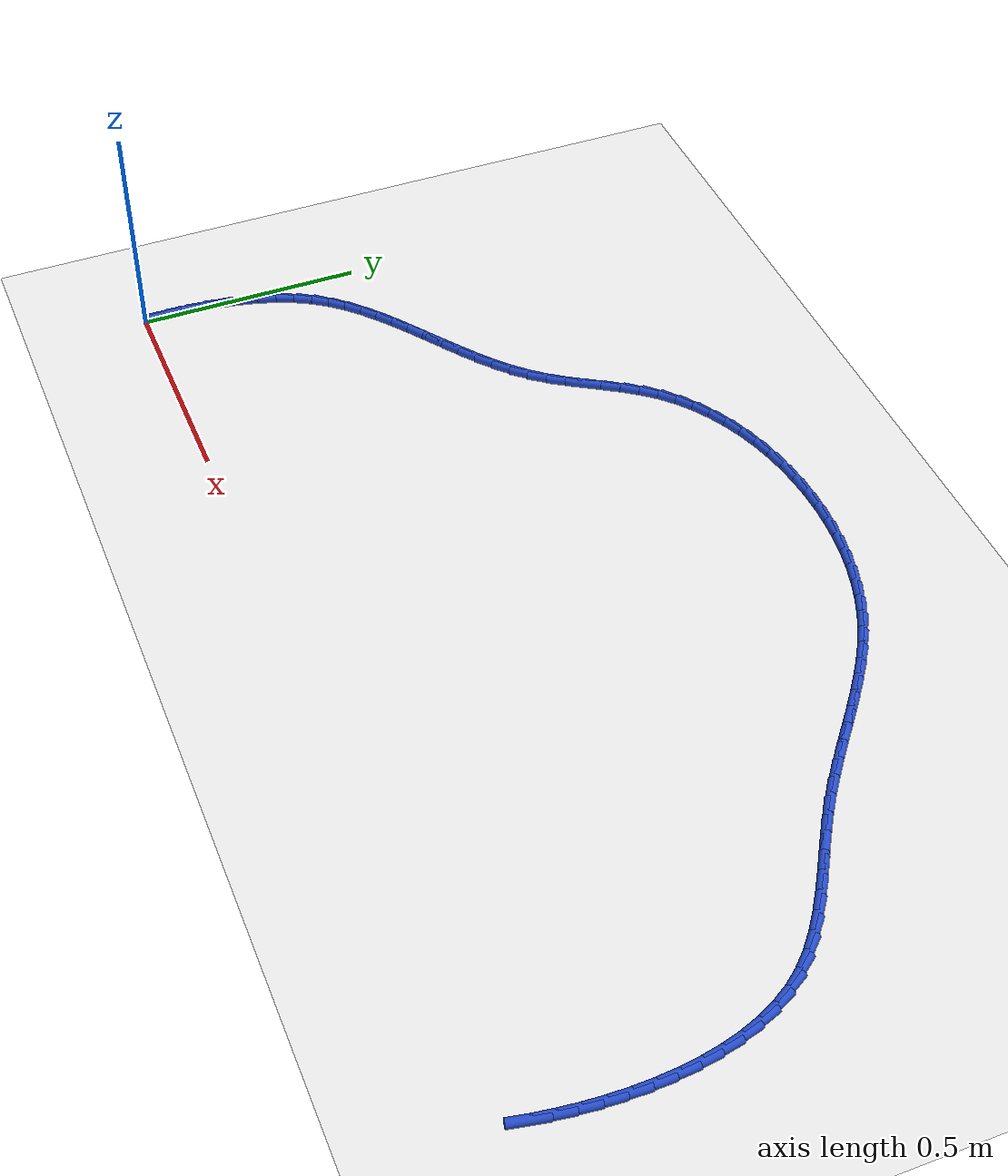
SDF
<sdf version="1.6">
 <world name="default">
  <model name="ground_plane">
   <static>1</static>
   <link name="link">
    <collision name="collision">
     <geometry><plane><normal>0 0 1</normal><size>100 100</size></plane></geometry>
     <surface><friction><ode><mu>100</mu><mu2>50</mu2></ode></friction></surface>
    </collision>
    <visual name="visual">
     <cast_shadows>0</cast_shadows>
     <geometry><plane><normal>0 0 1</normal><size>100 100</size></plane></geometry>
     <material>
      <script><uri>file://media/materials/scripts/gazebo.material</uri><name>Gazebo/WhiteGlow</name></script>
     </material>
    </visual>
   </link>
  </model>
  <model name="line">
   <link name="link_1">
    <pose>-0.0006810844086082563 0.044944533552194264 0.01 0 1.57 1.5507419571572678</pose>
    <collision name="collision">
     <geometry><cylinder><radius>0.01</radius><length>0.08</length></cylinder></geometry>
    </collision>
    <visual name="visual">
     <material>
      <script><name>Gazebo/Blue</name><uri>file://media/materials/scripts/gazebo.material</uri></script>
     </material>
     <geometry><cylinder><radius>0.01</radius><length>0.08</length></cylinder></geometry>
    </visual>
   </link>
   <link name="link_2">
    <pose>0.00022326739006194713 0.09003348798143386 0.01 0 1.57 1.5091520987764244</pose>
    <collision name="collision">
     <geometry><cylinder><radius>0.01</radius><length>0.08</length></cylinder></geometry>
    </collision>
    <visual name="visual">
     <material>
      <script><name>Gazebo/Blue</name><uri>file://media/materials/scripts/gazebo.material</uri></script>
     </material>
     <geometry><cylinder><radius>0.01</radius><length>0.08</length></cylinder></geometry>
    </visual>
   </link>
   <link name="link_3">
    <pose>0.002993428314982008 0.13491443213614773 0.01 0 1.57 1.4603209180004186</pose>
    <collision name="collision">
     <geometry><cylinder><radius>0.01</radius><length>0.08</length></cylinder></geometry>
    </collision>
    <visual name="visual">
     <material>
      <script><name>Gazebo/Blue</name><uri>file://media/materials/scripts/gazebo.material</uri></script>
     </material>
     <geometry><cylinder><radius>0.01</radius><length>0.08</length></cylinder></geometry>
    </visual>
   </link>
   <link name="link_4">
    <pose>0.007909771285123334 0.17923493486476474 0.01 0 1.57 1.4032212727957087</pose>
    <collision name="collision">
     <geometry><cylinder><radius>0.01</radius><length>0.08</length></cylinder></geometry>
    </collision>
    <visual name="visual">
     <material>
      <script><name>Gazebo/Blue</name><uri>file://media/materials/scripts/gazebo.material</uri></script>
     </material>
     <geometry><cylinder><radius>0.01</radius><length>0.08</length></cylinder></geometry>
    </visual>
   </link>
   <link name="link_5">
    <pose>0.015252669219457327 0.22264256501571383 0.01 0 1.57 1.3366952583611549</pose>
    <collision name="collision">
     <geometry><cylinder><radius>0.01</radius><length>0.08</length></cylinder></geometry>
    </collision>
    <visual name="visual">
     <material>
      <script><name>Gazebo/Blue</name><uri>file://media/materials/scripts/gazebo.material</uri></script>
     </material>
     <geometry><cylinder><radius>0.01</radius><length>0.08</length></cylinder></geometry>
    </visual>
   </link>
   <link name="link_6">
    <pose>0.025302495036955412 0.2647848914374238 0.01 0 1.57 1.2595438802911676</pose>
    <collision name="collision">
     <geometry><cylinder><radius>0.01</radius><length>0.08</length></cylinder></geometry>
    </collision>
    <visual name="visual">
     <material>
      <script><name>Gazebo/Blue</name><uri>file://media/materials/scripts/gazebo.material</uri></script>
     </material>
     <geometry><cylinder><radius>0.01</radius><length>0.08</length></cylinder></geometry>
    </visual>
   </link>
   <link name="link_7">
    <pose>0.03833962165658896 0.30530948297832355 0.01 0 1.57 1.170702798260568</pose>
    <collision name="collision">
     <geometry><cylinder><radius>0.01</radius><length>0.08</length></cylinder></geometry>
    </collision>
    <visual name="visual">
     <material>
      <script><name>Gazebo/Blue</name><uri>file://media/materials/scripts/gazebo.material</uri></script>
     </material>
     <geometry><cylinder><radius>0.01</radius><length>0.08</length></cylinder></geometry>
    </visual>
   </link>
   <link name="link_8">
    <pose>0.05464442199732939 0.34386390848684195 0.01 0 1.57 1.0695365118263913</pose>
    <collision name="collision">
     <geometry><cylinder><radius>0.01</radius><length>0.08</length></cylinder></geometry>
    </collision>
    <visual name="visual">
     <material>
      <script><name>Gazebo/Blue</name><uri>file://media/materials/scripts/gazebo.material</uri></script>
     </material>
     <geometry><cylinder><radius>0.01</radius><length>0.08</length></cylinder></geometry>
    </visual>
   </link>
   <link name="link_9">
    <pose>0.07449726897814812 0.38009573681140796 0.01 0 1.57 0.9596895195471774</pose>
    <collision name="collision">
     <geometry><cylinder><radius>0.01</radius><length>0.08</length></cylinder></geometry>
    </collision>
    <visual name="visual">
     <material>
      <script><name>Gazebo/Blue</name><uri>file://media/materials/scripts/gazebo.material</uri></script>
     </material>
     <geometry><cylinder><radius>0.01</radius><length>0.08</length></cylinder></geometry>
    </visual>
   </link>
   <link name="link_10">
    <pose>0.09807415052391417 0.41374970725378674 0.01 0 1.57 0.8599576480579803</pose>
    <collision name="collision">
     <geometry><cylinder><radius>0.01</radius><length>0.08</length></cylinder></geometry>
    </collision>
    <visual name="visual">
     <material>
      <script><name>Gazebo/Blue</name><uri>file://media/materials/scripts/gazebo.material</uri></script>
     </material>
     <geometry><cylinder><radius>0.01</radius><length>0.08</length></cylinder></geometry>
    </visual>
   </link>
   <link name="link_11">
    <pose>0.12502897283697698 0.44505655730056204 0.01 0 1.57 0.7772570600761505</pose>
    <collision name="collision">
     <geometry><cylinder><radius>0.01</radius><length>0.08</length></cylinder></geometry>
    </collision>
    <visual name="visual">
     <material>
      <script><name>Gazebo/Blue</name><uri>file://media/materials/scripts/gazebo.material</uri></script>
     </material>
     <geometry><cylinder><radius>0.01</radius><length>0.08</length></cylinder></geometry>
    </visual>
   </link>
   <link name="link_12">
    <pose>0.15485275519003858 0.47439865348167265 0.01 0 1.57 0.7117297020319722</pose>
    <collision name="collision">
     <geometry><cylinder><radius>0.01</radius><length>0.08</length></cylinder></geometry>
    </collision>
    <visual name="visual">
     <material>
      <script><name>Gazebo/Blue</name><uri>file://media/materials/scripts/gazebo.material</uri></script>
     </material>
     <geometry><cylinder><radius>0.01</radius><length>0.08</length></cylinder></geometry>
    </visual>
   </link>
   <link name="link_13">
    <pose>0.18703646300983845 0.5021584124514704 0.01 0 1.57 0.6626610174407837</pose>
    <collision name="collision">
     <geometry><cylinder><radius>0.01</radius><length>0.08</length></cylinder></geometry>
    </collision>
    <visual name="visual">
     <material>
      <script><name>Gazebo/Blue</name><uri>file://media/materials/scripts/gazebo.material</uri></script>
     </material>
     <geometry><cylinder><radius>0.01</radius><length>0.08</length></cylinder></geometry>
    </visual>
   </link>
   <link name="link_14">
    <pose>0.2210710617231165 0.5287182508643081 0.01 0 1.57 0.6290551413989284</pose>
    <collision name="collision">
     <geometry><cylinder><radius>0.01</radius><length>0.08</length></cylinder></geometry>
    </collision>
    <visual name="visual">
     <material>
      <script><name>Gazebo/Blue</name><uri>file://media/materials/scripts/gazebo.material</uri></script>
     </material>
     <geometry><cylinder><radius>0.01</radius><length>0.08</length></cylinder></geometry>
    </visual>
   </link>
   <link name="link_15">
    <pose>0.25644751675661204 0.5544605853745377 0.01 0 1.57 0.6099981581659969</pose>
    <collision name="collision">
     <geometry><cylinder><radius>0.01</radius><length>0.08</length></cylinder></geometry>
    </collision>
    <visual name="visual">
     <material>
      <script><name>Gazebo/Blue</name><uri>file://media/materials/scripts/gazebo.material</uri></script>
     </material>
     <geometry><cylinder><radius>0.01</radius><length>0.08</length></cylinder></geometry>
    </visual>
   </link>
   <link name="link_16">
    <pose>0.292656793537065 0.5797678326365115 0.01 0 1.57 0.6048496134584312</pose>
    <collision name="collision">
     <geometry><cylinder><radius>0.01</radius><length>0.08</length></cylinder></geometry>
    </collision>
    <visual name="visual">
     <material>
      <script><name>Gazebo/Blue</name><uri>file://media/materials/scripts/gazebo.material</uri></script>
     </material>
     <geometry><cylinder><radius>0.01</radius><length>0.08</length></cylinder></geometry>
    </visual>
   </link>
   <link name="link_17">
    <pose>0.32918985749121477 0.6050224093045818 0.01 0 1.57 0.6133219655109351</pose>
    <collision name="collision">
     <geometry><cylinder><radius>0.01</radius><length>0.08</length></cylinder></geometry>
    </collision>
    <visual name="visual">
     <material>
      <script><name>Gazebo/Blue</name><uri>file://media/materials/scripts/gazebo.material</uri></script>
     </material>
     <geometry><cylinder><radius>0.01</radius><length>0.08</length></cylinder></geometry>
    </visual>
   </link>
   <link name="link_18">
    <pose>0.365537674045801 0.6306067320331007 0.01 0 1.57 0.6354893923055147</pose>
    <collision name="collision">
     <geometry><cylinder><radius>0.01</radius><length>0.08</length></cylinder></geometry>
    </collision>
    <visual name="visual">
     <material>
      <script><name>Gazebo/Blue</name><uri>file://media/materials/scripts/gazebo.material</uri></script>
     </material>
     <geometry><cylinder><radius>0.01</radius><length>0.08</length></cylinder></geometry>
    </visual>
   </link>
   <link name="link_19">
    <pose>0.4011912086275633 0.6569032174764204 0.01 0 1.57 0.6717405891738678</pose>
    <collision name="collision">
     <geometry><cylinder><radius>0.01</radius><length>0.08</length></cylinder></geometry>
    </collision>
    <visual name="visual">
     <material>
      <script><name>Gazebo/Blue</name><uri>file://media/materials/scripts/gazebo.material</uri></script>
     </material>
     <geometry><cylinder><radius>0.01</radius><length>0.08</length></cylinder></geometry>
    </visual>
   </link>
   <link name="link_20">
    <pose>0.4356414266632411 0.6842942822888931 0.01 0 1.57 0.7226651045819766</pose>
    <collision name="collision">
     <geometry><cylinder><radius>0.01</radius><length>0.08</length></cylinder></geometry>
    </collision>
    <visual name="visual">
     <material>
      <script><name>Gazebo/Blue</name><uri>file://media/materials/scripts/gazebo.material</uri></script>
     </material>
     <geometry><cylinder><radius>0.01</radius><length>0.08</length></cylinder></geometry>
    </visual>
   </link>
   <link name="link_21">
    <pose>0.46837929357957453 0.7131623431248715 0.01 0 1.57 0.7888432618773925</pose>
    <collision name="collision">
     <geometry><cylinder><radius>0.01</radius><length>0.08</length></cylinder></geometry>
    </collision>
    <visual name="visual">
     <material>
      <script><name>Gazebo/Blue</name><uri>file://media/materials/scripts/gazebo.material</uri></script>
     </material>
     <geometry><cylinder><radius>0.01</radius><length>0.08</length></cylinder></geometry>
    </visual>
   </link>
   <link name="link_22">
    <pose>0.4988957748033028 0.7438898166387076 0.01 0 1.57 0.8704220791844608</pose>
    <collision name="collision">
     <geometry><cylinder><radius>0.01</radius><length>0.08</length></cylinder></geometry>
    </collision>
    <visual name="visual">
     <material>
      <script><name>Gazebo/Blue</name><uri>file://media/materials/scripts/gazebo.material</uri></script>
     </material>
     <geometry><cylinder><radius>0.01</radius><length>0.08</length></cylinder></geometry>
    </visual>
   </link>
   <link name="link_23">
    <pose>0.526684602209757 0.7768568271161431 0.01 0 1.57 0.9526321386942915</pose>
    <collision name="collision">
     <geometry><cylinder><radius>0.01</radius><length>0.08</length></cylinder></geometry>
    </collision>
    <visual name="visual">
     <material>
      <script><name>Gazebo/Blue</name><uri>file://media/materials/scripts/gazebo.material</uri></script>
     </material>
     <geometry><cylinder><radius>0.01</radius><length>0.08</length></cylinder></geometry>
    </visual>
   </link>
   <link name="link_24">
    <pose>0.5517128317124437 0.812051287264964 0.01 0 1.57 1.0047726735013622</pose>
    <collision name="collision">
     <geometry><cylinder><radius>0.01</radius><length>0.08</length></cylinder></geometry>
    </collision>
    <visual name="visual">
     <material>
      <script><name>Gazebo/Blue</name><uri>file://media/materials/scripts/gazebo.material</uri></script>
     </material>
     <geometry><cylinder><radius>0.01</radius><length>0.08</length></cylinder></geometry>
    </visual>
   </link>
   <link name="link_25">
    <pose>0.5749527635990592 0.8486281318530355 0.01 0 1.57 1.0234953961238702</pose>
    <collision name="collision">
     <geometry><cylinder><radius>0.01</radius><length>0.08</length></cylinder></geometry>
    </collision>
    <visual name="visual">
     <material>
      <script><name>Gazebo/Blue</name><uri>file://media/materials/scripts/gazebo.material</uri></script>
     </material>
     <geometry><cylinder><radius>0.01</radius><length>0.08</length></cylinder></geometry>
    </visual>
   </link>
   <link name="link_26">
    <pose>0.5975051736505235 0.8856358367070707 0.01 0 1.57 1.0090250794688906</pose>
    <collision name="collision">
     <geometry><cylinder><radius>0.01</radius><length>0.08</length></cylinder></geometry>
    </collision>
    <visual name="visual">
     <material>
      <script><name>Gazebo/Blue</name><uri>file://media/materials/scripts/gazebo.material</uri></script>
     </material>
     <geometry><cylinder><radius>0.01</radius><length>0.08</length></cylinder></geometry>
    </visual>
   </link>
   <link name="link_27">
    <pose>0.6204708376477565 0.9221228776537832 0.01 0 1.57 0.9606591045515588</pose>
    <collision name="collision">
     <geometry><cylinder><radius>0.01</radius><length>0.08</length></cylinder></geometry>
    </collision>
    <visual name="visual">
     <material>
      <script><name>Gazebo/Blue</name><uri>file://media/materials/scripts/gazebo.material</uri></script>
     </material>
     <geometry><cylinder><radius>0.01</radius><length>0.08</length></cylinder></geometry>
    </visual>
   </link>
   <link name="link_28">
    <pose>0.6449505313716779 0.9571377305198859 0.01 0 1.57 0.8772939229482605</pose>
    <collision name="collision">
     <geometry><cylinder><radius>0.01</radius><length>0.08</length></cylinder></geometry>
    </collision>
    <visual name="visual">
     <material>
      <script><name>Gazebo/Blue</name><uri>file://media/materials/scripts/gazebo.material</uri></script>
     </material>
     <geometry><cylinder><radius>0.01</radius><length>0.08</length></cylinder></geometry>
    </visual>
   </link>
   <link name="link_29">
    <pose>0.6720428835687671 0.9897303723007791 0.01 0 1.57 0.7707152176978957</pose>
    <collision name="collision">
     <geometry><cylinder><radius>0.01</radius><length>0.08</length></cylinder></geometry>
    </collision>
    <visual name="visual">
     <material>
      <script><name>Gazebo/Blue</name><uri>file://media/materials/scripts/gazebo.material</uri></script>
     </material>
     <geometry><cylinder><radius>0.01</radius><length>0.08</length></cylinder></geometry>
    </visual>
   </link>
   <link name="link_30">
    <pose>0.7024324015693675 1.0192403263961836 0.01 0 1.57 0.6678886197364894</pose>
    <collision name="collision">
     <geometry><cylinder><radius>0.01</radius><length>0.08</length></cylinder></geometry>
    </collision>
    <visual name="visual">
     <material>
      <script><name>Gazebo/Blue</name><uri>file://media/materials/scripts/gazebo.material</uri></script>
     </material>
     <geometry><cylinder><radius>0.01</radius><length>0.08</length></cylinder></geometry>
    </visual>
   </link>
   <link name="link_31">
    <pose>0.7358990221644862 1.0456395760036363 0.01 0 1.57 0.572702486377812</pose>
    <collision name="collision">
     <geometry><cylinder><radius>0.01</radius><length>0.08</length></cylinder></geometry>
    </collision>
    <visual name="visual">
     <material>
      <script><name>Gazebo/Blue</name><uri>file://media/materials/scripts/gazebo.material</uri></script>
     </material>
     <geometry><cylinder><radius>0.01</radius><length>0.08</length></cylinder></geometry>
    </visual>
   </link>
   <link name="link_32">
    <pose>0.7721032374635672 1.068983617939421 0.01 0 1.57 0.4850321787184727</pose>
    <collision name="collision">
     <geometry><cylinder><radius>0.01</radius><length>0.08</length></cylinder></geometry>
    </collision>
    <visual name="visual">
     <material>
      <script><name>Gazebo/Blue</name><uri>file://media/materials/scripts/gazebo.material</uri></script>
     </material>
     <geometry><cylinder><radius>0.01</radius><length>0.08</length></cylinder></geometry>
    </visual>
   </link>
   <link name="link_33">
    <pose>0.8107055395760552 1.0893279490198204 0.01 0 1.57 0.4043519719018759</pose>
    <collision name="collision">
     <geometry><cylinder><radius>0.01</radius><length>0.08</length></cylinder></geometry>
    </collision>
    <visual name="visual">
     <material>
      <script><name>Gazebo/Blue</name><uri>file://media/materials/scripts/gazebo.material</uri></script>
     </material>
     <geometry><cylinder><radius>0.01</radius><length>0.08</length></cylinder></geometry>
    </visual>
   </link>
   <link name="link_34">
    <pose>0.8513664206113934 1.1067280660611192 0.01 0 1.57 0.32989888907830317</pose>
    <collision name="collision">
     <geometry><cylinder><radius>0.01</radius><length>0.08</length></cylinder></geometry>
    </collision>
    <visual name="visual">
     <material>
      <script><name>Gazebo/Blue</name><uri>file://media/materials/scripts/gazebo.material</uri></script>
     </material>
     <geometry><cylinder><radius>0.01</radius><length>0.08</length></cylinder></geometry>
    </visual>
   </link>
   <link name="link_35">
    <pose>0.8937463726790258 1.1212394658795997 0.01 0 1.57 0.26079387133389514</pose>
    <collision name="collision">
     <geometry><cylinder><radius>0.01</radius><length>0.08</length></cylinder></geometry>
    </collision>
    <visual name="visual">
     <material>
      <script><name>Gazebo/Blue</name><uri>file://media/materials/scripts/gazebo.material</uri></script>
     </material>
     <geometry><cylinder><radius>0.01</radius><length>0.08</length></cylinder></geometry>
    </visual>
   </link>
   <link name="link_36">
    <pose>0.9375058878883971 1.132917645291546 0.01 0 1.57 0.1961190748766694</pose>
    <collision name="collision">
     <geometry><cylinder><radius>0.01</radius><length>0.08</length></cylinder></geometry>
    </collision>
    <visual name="visual">
     <material>
      <script><name>Gazebo/Blue</name><uri>file://media/materials/scripts/gazebo.material</uri></script>
     </material>
     <geometry><cylinder><radius>0.01</radius><length>0.08</length></cylinder></geometry>
    </visual>
   </link>
   <link name="link_37">
    <pose>0.9823054583489504 1.1418181011132411 0.01 0 1.57 0.13495950097063336</pose>
    <collision name="collision">
     <geometry><cylinder><radius>0.01</radius><length>0.08</length></cylinder></geometry>
    </collision>
    <visual name="visual">
     <material>
      <script><name>Gazebo/Blue</name><uri>file://media/materials/scripts/gazebo.material</uri></script>
     </material>
     <geometry><cylinder><radius>0.01</radius><length>0.08</length></cylinder></geometry>
    </visual>
   </link>
   <link name="link_38">
    <pose>1.0278055761701306 1.1479963301609686 0.01 0 1.57 0.07641893678887425</pose>
    <collision name="collision">
     <geometry><cylinder><radius>0.01</radius><length>0.08</length></cylinder></geometry>
    </collision>
    <visual name="visual">
     <material>
      <script><name>Gazebo/Blue</name><uri>file://media/materials/scripts/gazebo.material</uri></script>
     </material>
     <geometry><cylinder><radius>0.01</radius><length>0.08</length></cylinder></geometry>
    </visual>
   </link>
   <link name="link_39">
    <pose>1.0736667334613808 1.1515078292510126 0.01 0 1.57 0.01961851992147867</pose>
    <collision name="collision">
     <geometry><cylinder><radius>0.01</radius><length>0.08</length></cylinder></geometry>
    </collision>
    <visual name="visual">
     <material>
      <script><name>Gazebo/Blue</name><uri>file://media/materials/scripts/gazebo.material</uri></script>
     </material>
     <geometry><cylinder><radius>0.01</radius><length>0.08</length></cylinder></geometry>
    </visual>
   </link>
   <link name="link_40">
    <pose>1.1195494223321454 1.1524080951996556 0.01 0 1.57 -0.03631631658434748</pose>
    <collision name="collision">
     <geometry><cylinder><radius>0.01</radius><length>0.08</length></cylinder></geometry>
    </collision>
    <visual name="visual">
     <material>
      <script><name>Gazebo/Blue</name><uri>file://media/materials/scripts/gazebo.material</uri></script>
     </material>
     <geometry><cylinder><radius>0.01</radius><length>0.08</length></cylinder></geometry>
    </visual>
   </link>
   <link name="link_41">
    <pose>1.1651141348918688 1.1507526248231816 0.01 0 1.57 -0.09227707807607448</pose>
    <collision name="collision">
     <geometry><cylinder><radius>0.01</radius><length>0.08</length></cylinder></geometry>
    </collision>
    <visual name="visual">
     <material>
      <script><name>Gazebo/Blue</name><uri>file://media/materials/scripts/gazebo.material</uri></script>
     </material>
     <geometry><cylinder><radius>0.01</radius><length>0.08</length></cylinder></geometry>
    </visual>
   </link>
   <link name="link_42">
    <pose>1.2100213633667625 1.146596914921846 0.01 0 1.57 -0.14918624780639053</pose>
    <collision name="collision">
     <geometry><cylinder><radius>0.01</radius><length>0.08</length></cylinder></geometry>
    </collision>
    <visual name="visual">
     <material>
      <script><name>Gazebo/Blue</name><uri>file://media/materials/scripts/gazebo.material</uri></script>
     </material>
     <geometry><cylinder><radius>0.01</radius><length>0.08</length></cylinder></geometry>
    </visual>
   </link>
   <link name="link_43">
    <pose>1.2539786262414898 1.1399900073003981 0.01 0 1.57 -0.20756867615364527</pose>
    <collision name="collision">
     <geometry><cylinder><radius>0.01</radius><length>0.08</length></cylinder></geometry>
    </collision>
    <visual name="visual">
     <material>
      <script><name>Gazebo/Blue</name><uri>file://media/materials/scripts/gazebo.material</uri></script>
     </material>
     <geometry><cylinder><radius>0.01</radius><length>0.08</length></cylinder></geometry>
    </visual>
   </link>
   <link name="link_44">
    <pose>1.2968739595898082 1.1309561652618572 0.01 0 1.57 -0.2674121562361283</pose>
    <collision name="collision">
     <geometry><cylinder><radius>0.01</radius><length>0.08</length></cylinder></geometry>
    </collision>
    <visual name="visual">
     <material>
      <script><name>Gazebo/Blue</name><uri>file://media/materials/scripts/gazebo.material</uri></script>
     </material>
     <geometry><cylinder><radius>0.01</radius><length>0.08</length></cylinder></geometry>
    </visual>
   </link>
   <link name="link_45">
    <pose>1.338638707936685 1.1195137074334982 0.01 0 1.57 -0.3286327748674173</pose>
    <collision name="collision">
     <geometry><cylinder><radius>0.01</radius><length>0.08</length></cylinder></geometry>
    </collision>
    <visual name="visual">
     <material>
      <script><name>Gazebo/Blue</name><uri>file://media/materials/scripts/gazebo.material</uri></script>
     </material>
     <geometry><cylinder><radius>0.01</radius><length>0.08</length></cylinder></geometry>
    </visual>
   </link>
   <link name="link_46">
    <pose>1.3792042158070907 1.1056809524425968 0.01 0 1.57 -0.3911152846077353</pose>
    <collision name="collision">
     <geometry><cylinder><radius>0.01</radius><length>0.08</length></cylinder></geometry>
    </collision>
    <visual name="visual">
     <material>
      <script><name>Gazebo/Blue</name><uri>file://media/materials/scripts/gazebo.material</uri></script>
     </material>
     <geometry><cylinder><radius>0.01</radius><length>0.08</length></cylinder></geometry>
    </visual>
   </link>
   <link name="link_47">
    <pose>1.4185018277259929 1.089476218916428 0.01 0 1.57 -0.45470942995770874</pose>
    <collision name="collision">
     <geometry><cylinder><radius>0.01</radius><length>0.08</length></cylinder></geometry>
    </collision>
    <visual name="visual">
     <material>
      <script><name>Gazebo/Blue</name><uri>file://media/materials/scripts/gazebo.material</uri></script>
     </material>
     <geometry><cylinder><radius>0.01</radius><length>0.08</length></cylinder></geometry>
    </visual>
   </link>
   <link name="link_48">
    <pose>1.4564629646432756 1.0709179039121723 0.01 0 1.57 -0.516883037754754</pose>
    <collision name="collision">
     <geometry><cylinder><radius>0.01</radius><length>0.08</length></cylinder></geometry>
    </collision>
    <visual name="visual">
     <material>
      <script><name>Gazebo/Blue</name><uri>file://media/materials/scripts/gazebo.material</uri></script>
     </material>
     <geometry><cylinder><radius>0.01</radius><length>0.08</length></cylinder></geometry>
    </visual>
   </link>
   <link name="link_49">
    <pose>1.4930904797452682 1.050097710732452 0.01 0 1.57 -0.57052524719998</pose>
    <collision name="collision">
     <geometry><cylinder><radius>0.01</radius><length>0.08</length></cylinder></geometry>
    </collision>
    <visual name="visual">
     <material>
      <script><name>Gazebo/Blue</name><uri>file://media/materials/scripts/gazebo.material</uri></script>
     </material>
     <geometry><cylinder><radius>0.01</radius><length>0.08</length></cylinder></geometry>
    </visual>
   </link>
   <link name="link_50">
    <pose>1.5285911289526872 1.027316594757615 0.01 0 1.57 -0.6140588694752437</pose>
    <collision name="collision">
     <geometry><cylinder><radius>0.01</radius><length>0.08</length></cylinder></geometry>
    </collision>
    <visual name="visual">
     <material>
      <script><name>Gazebo/Blue</name><uri>file://media/materials/scripts/gazebo.material</uri></script>
     </material>
     <geometry><cylinder><radius>0.01</radius><length>0.08</length></cylinder></geometry>
    </visual>
   </link>
   <link name="link_51">
    <pose>1.563207813812154 1.0029126052664503 0.01 0 1.57 -0.6473908055903667</pose>
    <collision name="collision">
     <geometry><cylinder><radius>0.01</radius><length>0.08</length></cylinder></geometry>
    </collision>
    <visual name="visual">
     <material>
      <script><name>Gazebo/Blue</name><uri>file://media/materials/scripts/gazebo.material</uri></script>
     </material>
     <geometry><cylinder><radius>0.01</radius><length>0.08</length></cylinder></geometry>
    </visual>
   </link>
   <link name="link_52">
    <pose>1.5971834358702874 0.9772237915377474 0.01 0 1.57 -0.6706164122329817</pose>
    <collision name="collision">
     <geometry><cylinder><radius>0.01</radius><length>0.08</length></cylinder></geometry>
    </collision>
    <visual name="visual">
     <material>
      <script><name>Gazebo/Blue</name><uri>file://media/materials/scripts/gazebo.material</uri></script>
     </material>
     <geometry><cylinder><radius>0.01</radius><length>0.08</length></cylinder></geometry>
    </visual>
   </link>
   <link name="link_53">
    <pose>1.6307608966737093 0.9505882028502949 0.01 0 1.57 -0.6839144448619148</pose>
    <collision name="collision">
     <geometry><cylinder><radius>0.01</radius><length>0.08</length></cylinder></geometry>
    </collision>
    <visual name="visual">
     <material>
      <script><name>Gazebo/Blue</name><uri>file://media/materials/scripts/gazebo.material</uri></script>
     </material>
     <geometry><cylinder><radius>0.01</radius><length>0.08</length></cylinder></geometry>
    </visual>
   </link>
   <link name="link_54">
    <pose>1.664183097769039 0.9233438884828822 0.01 0 1.57 -0.6874760794268846</pose>
    <collision name="collision">
     <geometry><cylinder><radius>0.01</radius><length>0.08</length></cylinder></geometry>
    </collision>
    <visual name="visual">
     <material>
      <script><name>Gazebo/Blue</name><uri>file://media/materials/scripts/gazebo.material</uri></script>
     </material>
     <geometry><cylinder><radius>0.01</radius><length>0.08</length></cylinder></geometry>
    </visual>
   </link>
   <link name="link_55">
    <pose>1.6976929407028971 0.8958288977142981 0.01 0 1.57 -0.6814669887372637</pose>
    <collision name="collision">
     <geometry><cylinder><radius>0.01</radius><length>0.08</length></cylinder></geometry>
    </collision>
    <visual name="visual">
     <material>
      <script><name>Gazebo/Blue</name><uri>file://media/materials/scripts/gazebo.material</uri></script>
     </material>
     <geometry><cylinder><radius>0.01</radius><length>0.08</length></cylinder></geometry>
    </visual>
   </link>
   <link name="link_56">
    <pose>1.7315333270219044 0.8683812798233315 0.01 0 1.57 -0.6660187672339467</pose>
    <collision name="collision">
     <geometry><cylinder><radius>0.01</radius><length>0.08</length></cylinder></geometry>
    </collision>
    <visual name="visual">
     <material>
      <script><name>Gazebo/Blue</name><uri>file://media/materials/scripts/gazebo.material</uri></script>
     </material>
     <geometry><cylinder><radius>0.01</radius><length>0.08</length></cylinder></geometry>
    </visual>
   </link>
   <link name="link_57">
    <pose>1.7659471582726818 0.8413390840887721 0.01 0 1.57 -0.6412463450030313</pose>
    <collision name="collision">
     <geometry><cylinder><radius>0.01</radius><length>0.08</length></cylinder></geometry>
    </collision>
    <visual name="visual">
     <material>
      <script><name>Gazebo/Blue</name><uri>file://media/materials/scripts/gazebo.material</uri></script>
     </material>
     <geometry><cylinder><radius>0.01</radius><length>0.08</length></cylinder></geometry>
    </visual>
   </link>
   <link name="link_58">
    <pose>1.8011773360018482 0.8150403597894081 0.01 0 1.57 -0.607378121552092</pose>
    <collision name="collision">
     <geometry><cylinder><radius>0.01</radius><length>0.08</length></cylinder></geometry>
    </collision>
    <visual name="visual">
     <material>
      <script><name>Gazebo/Blue</name><uri>file://media/materials/scripts/gazebo.material</uri></script>
     </material>
     <geometry><cylinder><radius>0.01</radius><length>0.08</length></cylinder></geometry>
    </visual>
   </link>
   <link name="link_59">
    <pose>1.837463980495212 0.7898202942725596 0.01 0 1.57 -0.5732715717732695</pose>
    <collision name="collision">
     <geometry><cylinder><radius>0.01</radius><length>0.08</length></cylinder></geometry>
    </collision>
    <visual name="visual">
     <material>
      <script><name>Gazebo/Blue</name><uri>file://media/materials/scripts/gazebo.material</uri></script>
     </material>
     <geometry><cylinder><radius>0.01</radius><length>0.08</length></cylinder></geometry>
    </visual>
   </link>
   <link name="link_60">
    <pose>1.8747741395476392 0.7657330819086782 0.01 0 1.57 -0.5545554981915268</pose>
    <collision name="collision">
     <geometry><cylinder><radius>0.01</radius><length>0.08</length></cylinder></geometry>
    </collision>
    <visual name="visual">
     <material>
      <script><name>Gazebo/Blue</name><uri>file://media/materials/scripts/gazebo.material</uri></script>
     </material>
     <geometry><cylinder><radius>0.01</radius><length>0.08</length></cylinder></geometry>
    </visual>
   </link>
   <link name="link_61">
    <pose>1.9125756202310609 0.7423191958346028 0.01 0 1.57 -0.5526227754636205</pose>
    <collision name="collision">
     <geometry><cylinder><radius>0.01</radius><length>0.08</length></cylinder></geometry>
    </collision>
    <visual name="visual">
     <material>
      <script><name>Gazebo/Blue</name><uri>file://media/materials/scripts/gazebo.material</uri></script>
     </material>
     <geometry><cylinder><radius>0.01</radius><length>0.08</length></cylinder></geometry>
    </visual>
   </link>
   <link name="link_62">
    <pose>1.950282985449193 0.7190643206682892 0.01 0 1.57 -0.5676326543227098</pose>
    <collision name="collision">
     <geometry><cylinder><radius>0.01</radius><length>0.08</length></cylinder></geometry>
    </collision>
    <visual name="visual">
     <material>
      <script><name>Gazebo/Blue</name><uri>file://media/materials/scripts/gazebo.material</uri></script>
     </material>
     <geometry><cylinder><radius>0.01</radius><length>0.08</length></cylinder></geometry>
    </visual>
   </link>
   <link name="link_63">
    <pose>1.987310798105755 0.6954541410276929 0.01 0 1.57 -0.6002501585268075</pose>
    <collision name="collision">
     <geometry><cylinder><radius>0.01</radius><length>0.08</length></cylinder></geometry>
    </collision>
    <visual name="visual">
     <material>
      <script><name>Gazebo/Blue</name><uri>file://media/materials/scripts/gazebo.material</uri></script>
     </material>
     <geometry><cylinder><radius>0.01</radius><length>0.08</length></cylinder></geometry>
    </visual>
   </link>
   <link name="link_64">
    <pose>2.0230736211044653 0.6709743415307695 0.01 0 1.57 -0.6515563831166744</pose>
    <collision name="collision">
     <geometry><cylinder><radius>0.01</radius><length>0.08</length></cylinder></geometry>
    </collision>
    <visual name="visual">
     <material>
      <script><name>Gazebo/Blue</name><uri>file://media/materials/scripts/gazebo.material</uri></script>
     </material>
     <geometry><cylinder><radius>0.01</radius><length>0.08</length></cylinder></geometry>
    </visual>
   </link>
   <link name="link_65">
    <pose>2.0569860173490415 0.645110606795475 0.01 0 1.57 -0.722775224584722</pose>
    <collision name="collision">
     <geometry><cylinder><radius>0.01</radius><length>0.08</length></cylinder></geometry>
    </collision>
    <visual name="visual">
     <material>
      <script><name>Gazebo/Blue</name><uri>file://media/materials/scripts/gazebo.material</uri></script>
     </material>
     <geometry><cylinder><radius>0.01</radius><length>0.08</length></cylinder></geometry>
    </visual>
   </link>
   <link name="link_66">
    <pose>2.088462549743204 0.6173486214397643 0.01 0 1.57 -0.8147147877382126</pose>
    <collision name="collision">
     <geometry><cylinder><radius>0.01</radius><length>0.08</length></cylinder></geometry>
    </collision>
    <visual name="visual">
     <material>
      <script><name>Gazebo/Blue</name><uri>file://media/materials/scripts/gazebo.material</uri></script>
     </material>
     <geometry><cylinder><radius>0.01</radius><length>0.08</length></cylinder></geometry>
    </visual>
   </link>
   <link name="link_67">
    <pose>2.1169177811906685 0.5871740700815936 0.01 0 1.57 -0.9262790079605181</pose>
    <collision name="collision">
     <geometry><cylinder><radius>0.01</radius><length>0.08</length></cylinder></geometry>
    </collision>
    <visual name="visual">
     <material>
      <script><name>Gazebo/Blue</name><uri>file://media/materials/scripts/gazebo.material</uri></script>
     </material>
     <geometry><cylinder><radius>0.01</radius><length>0.08</length></cylinder></geometry>
    </visual>
   </link>
   <link name="link_68">
    <pose>2.1417823449626714 0.5540914112691853 0.01 0 1.57 -1.0414834283191006</pose>
    <collision name="collision">
     <geometry><cylinder><radius>0.01</radius><length>0.08</length></cylinder></geometry>
    </collision>
    <visual name="visual">
     <material>
      <script><name>Gazebo/Blue</name><uri>file://media/materials/scripts/gazebo.material</uri></script>
     </material>
     <geometry><cylinder><radius>0.01</radius><length>0.08</length></cylinder></geometry>
    </visual>
   </link>
   <link name="link_69">
    <pose>2.162866910392255 0.5180490741392406 0.01 0 1.57 -1.1451472210695053</pose>
    <collision name="collision">
     <geometry><cylinder><radius>0.01</radius><length>0.08</length></cylinder></geometry>
    </collision>
    <visual name="visual">
     <material>
      <script><name>Gazebo/Blue</name><uri>file://media/materials/scripts/gazebo.material</uri></script>
     </material>
     <geometry><cylinder><radius>0.01</radius><length>0.08</length></cylinder></geometry>
    </visual>
   </link>
   <link name="link_70">
    <pose>2.1803680621448076 0.4794463267735551 0.01 0 1.57 -1.236939210070047</pose>
    <collision name="collision">
     <geometry><cylinder><radius>0.01</radius><length>0.08</length></cylinder></geometry>
    </collision>
    <visual name="visual">
     <material>
      <script><name>Gazebo/Blue</name><uri>file://media/materials/scripts/gazebo.material</uri></script>
     </material>
     <geometry><cylinder><radius>0.01</radius><length>0.08</length></cylinder></geometry>
    </visual>
   </link>
   <link name="link_71">
    <pose>2.194499631194215 0.43870258495700304 0.01 0 1.57 -1.3178662062581337</pose>
    <collision name="collision">
     <geometry><cylinder><radius>0.01</radius><length>0.08</length></cylinder></geometry>
    </collision>
    <visual name="visual">
     <material>
      <script><name>Gazebo/Blue</name><uri>file://media/materials/scripts/gazebo.material</uri></script>
     </material>
     <geometry><cylinder><radius>0.01</radius><length>0.08</length></cylinder></geometry>
    </visual>
   </link>
   <link name="link_72">
    <pose>2.205475448514361 0.3962372644744599 0.01 0 1.57 -1.3892586507899554</pose>
    <collision name="collision">
     <geometry><cylinder><radius>0.01</radius><length>0.08</length></cylinder></geometry>
    </collision>
    <visual name="visual">
     <material>
      <script><name>Gazebo/Blue</name><uri>file://media/materials/scripts/gazebo.material</uri></script>
     </material>
     <geometry><cylinder><radius>0.01</radius><length>0.08</length></cylinder></geometry>
    </visual>
   </link>
   <link name="link_73">
    <pose>2.2135093450791317 0.3524697811107999 0.01 0 1.57 -1.4525205116610045</pose>
    <collision name="collision">
     <geometry><cylinder><radius>0.01</radius><length>0.08</length></cylinder></geometry>
    </collision>
    <visual name="visual">
     <material>
      <script><name>Gazebo/Blue</name><uri>file://media/materials/scripts/gazebo.material</uri></script>
     </material>
     <geometry><cylinder><radius>0.01</radius><length>0.08</length></cylinder></geometry>
    </visual>
   </link>
   <link name="link_74">
    <pose>2.2188151518624117 0.3078195506508986 0.01 0 1.57 -1.508996877571794</pose>
    <collision name="collision">
     <geometry><cylinder><radius>0.01</radius><length>0.08</length></cylinder></geometry>
    </collision>
    <visual name="visual">
     <material>
      <script><name>Gazebo/Blue</name><uri>file://media/materials/scripts/gazebo.material</uri></script>
     </material>
     <geometry><cylinder><radius>0.01</radius><length>0.08</length></cylinder></geometry>
    </visual>
   </link>
   <link name="link_75">
    <pose>2.2216066998380875 0.2627059888796305 0.01 0 1.57 -1.5599210341685112</pose>
    <collision name="collision">
     <geometry><cylinder><radius>0.01</radius><length>0.08</length></cylinder></geometry>
    </collision>
    <visual name="visual">
     <material>
      <script><name>Gazebo/Blue</name><uri>file://media/materials/scripts/gazebo.material</uri></script>
     </material>
     <geometry><cylinder><radius>0.01</radius><length>0.08</length></cylinder></geometry>
    </visual>
   </link>
   <link name="link_76">
    <pose>2.2220978199800414 0.21754851158186955 0.01 0 1.57 1.5351836940679058</pose>
    <collision name="collision">
     <geometry><cylinder><radius>0.01</radius><length>0.08</length></cylinder></geometry>
    </collision>
    <visual name="visual">
     <material>
      <script><name>Gazebo/Blue</name><uri>file://media/materials/scripts/gazebo.material</uri></script>
     </material>
     <geometry><cylinder><radius>0.01</radius><length>0.08</length></cylinder></geometry>
    </visual>
   </link>
   <link name="link_77">
    <pose>2.220502340917815 0.17276652302370296 0.01 0 1.57 1.4918485956231338</pose>
    <collision name="collision">
     <geometry><cylinder><radius>0.01</radius><length>0.08</length></cylinder></geometry>
    </collision>
    <visual name="visual">
     <material>
      <script><name>Gazebo/Blue</name><uri>file://media/materials/scripts/gazebo.material</uri></script>
     </material>
     <geometry><cylinder><radius>0.01</radius><length>0.08</length></cylinder></geometry>
    </visual>
   </link>
   <link name="link_78">
    <pose>2.217015009320399 0.12868566955088345 0.01 0 1.57 1.4503507819647128</pose>
    <collision name="collision">
     <geometry><cylinder><radius>0.01</radius><length>0.08</length></cylinder></geometry>
    </collision>
    <visual name="visual">
     <material>
      <script><name>Gazebo/Blue</name><uri>file://media/materials/scripts/gazebo.material</uri></script>
     </material>
     <geometry><cylinder><radius>0.01</radius><length>0.08</length></cylinder></geometry>
    </visual>
   </link>
   <link name="link_79">
    <pose>2.2117652988793726 0.0853108831568844 0.01 0 1.57 1.410786194799704</pose>
    <collision name="collision">
     <geometry><cylinder><radius>0.01</radius><length>0.08</length></cylinder></geometry>
    </collision>
    <visual name="visual">
     <material>
      <script><name>Gazebo/Blue</name><uri>file://media/materials/scripts/gazebo.material</uri></script>
     </material>
     <geometry><cylinder><radius>0.01</radius><length>0.08</length></cylinder></geometry>
    </visual>
   </link>
   <link name="link_80">
    <pose>2.204868738259482 0.042578577890626794 0.01 0 1.57 1.3734646343865582</pose>
    <collision name="collision">
     <geometry><cylinder><radius>0.01</radius><length>0.08</length></cylinder></geometry>
    </collision>
    <visual name="visual">
     <material>
      <script><name>Gazebo/Blue</name><uri>file://media/materials/scripts/gazebo.material</uri></script>
     </material>
     <geometry><cylinder><radius>0.01</radius><length>0.08</length></cylinder></geometry>
    </visual>
   </link>
   <link name="link_161">
    <pose>-0.0007410149017667176 0.044999287641806246 0.01 0 1.57 -1.5543305565348282</pose>
    <collision name="collision">
     <geometry><cylinder><radius>0.01</radius><length>0.08</length></cylinder></geometry>
    </collision>
    <visual name="visual">
     <material>
      <script><name>Gazebo/Blue</name><uri>file://media/materials/scripts/gazebo.material</uri></script>
     </material>
     <geometry><cylinder><radius>0.01</radius><length>0.08</length></cylinder></geometry>
    </visual>
   </link>
  </model>
 </world>
</sdf>
